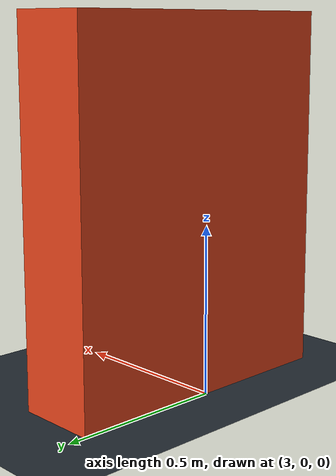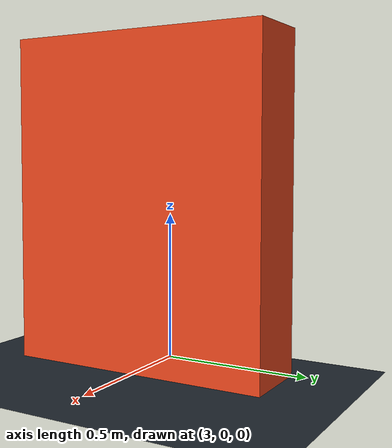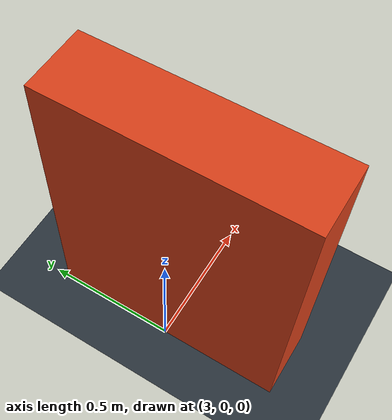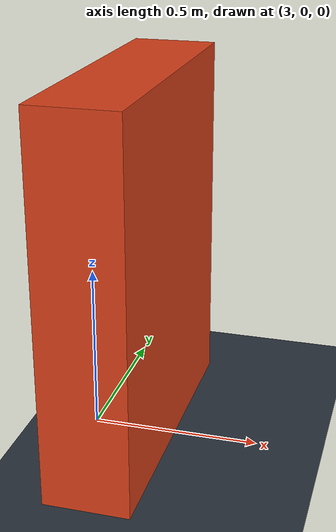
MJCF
<mujoco model="Crazyflow optical-flow racing scene">
  <option integrator="RK4" density="1.225" viscosity="1.8e-5" timestep="0.002"/>
  <compiler inertiafromgeom="false" autolimits="true"/>
  <statistic center="2 0 0.5" extent="4"/>
  <visual>
    <headlight diffuse="0.6 0.6 0.6" ambient="0.5 0.5 0.5" specular="0 0 0"/>
  </visual>
  <asset>
    <texture type="2d" name="ground" builtin="checker" rgb1=".25 .3 .35"
             rgb2=".08 .1 .12" width="256" height="256"/>
    <material name="ground" texture="ground" texrepeat="4 4" texuniform="true"/>
  </asset>
  <worldbody>
    <light pos="2 0 4" dir="0 0 -1" directional="true"/>
    <geom name="floor" type="plane" size="0 0 .05" material="ground"/>
    <!-- Front face is x=3.0, matching the source-matched camera scene. -->
    <geom name="target_box" type="box" pos="3.125 0 .55"
          size=".125 .45 .55" rgba=".85 .25 .1 1"/>
  </worldbody>
</mujoco>
